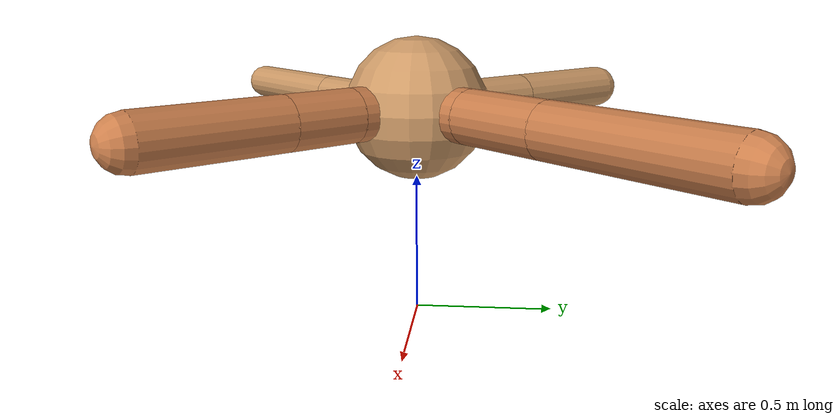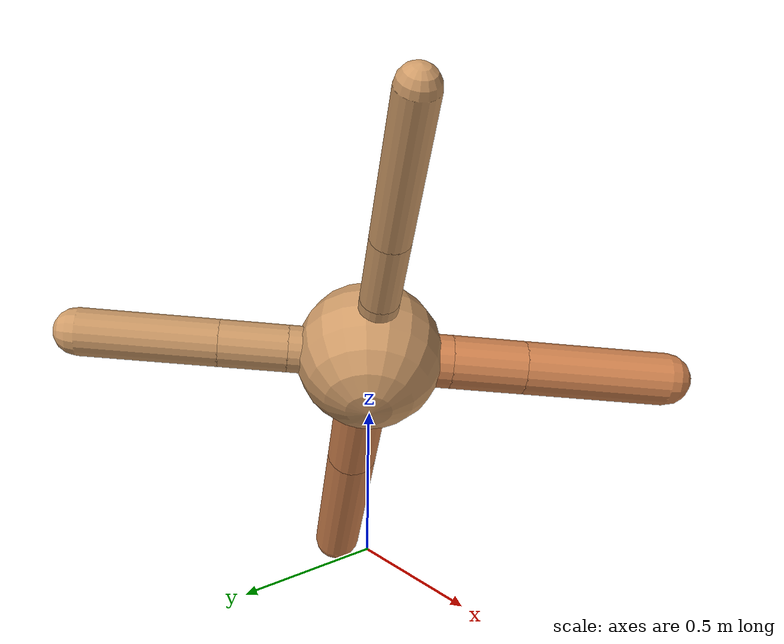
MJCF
<?xml version="1.0" ?>
<mujoco model="ant">

	<compiler angle="degree" coordinate="local" inertiafromgeom="true"/>

	<option integrator="RK4" timestep="0.01"/>

	<custom>

		<numeric data="0.0 0.0 0.55 1.0 0.0 0.0 0.0 0.0 1.0 0.0 -1.0 0.0 -1.0 0.0 1.0" name="init_qpos"/>

	</custom>

	<default>

		<joint armature="1" damping="1" limited="true"/>

		<geom conaffinity="0" condim="3" density="5.0" friction="1.5 0.1 0.1" margin="0.01" rgba="0.8 0.6 0.4 1"/>

	</default>

	<worldbody>

		<body name="torso" pos="0 0 0.75">

			<geom name="torso_geom" pos="0 0 0" size="0.25555048019405985" type="sphere"/>

			<!--joint armature="0" damping="0" limited="false" margin="0.01" name="root" pos="0 0 0" type="free"/-->

			<body name="front_left_leg" pos="0 0 0">

				<geom fromto="0 0 0 0.2 0.2 0" name="aux_1_geom" size="0.09549044981606084" type="capsule" rgba=".8 .5 .3 1"/>

				<body name="aux_1" pos="0.2 0.2 0">

					<joint axis="0 0 1" name="hip_1" pos="0.0 0.0 0.0" range="-40 40" type="hinge"/>

					<geom fromto="0 0 0 0.24183589118436133 0.24183589118436133 0" name="left_leg_geom" size="0.09549044981606084" type="capsule" rgba=".8 .5 .3 1"/>

					<body pos="0.24183589118436133 0.24183589118436133 0" name="front_left_foot">

						<joint axis="-1 1 0" name="ankle_1" pos="0.0 0.0 0.0" range="30 100" type="hinge"/>

						<geom fromto="0 0 0 0.48367178236872266 0.48367178236872266 0" name="left_ankle_geom" size="0.09549044981606084" type="capsule" rgba=".8 .5 .3 1"/>

					</body>

				</body>

			</body>

			<body name="front_right_leg" pos="0 0 0">

				<geom fromto="0 0 0 -0.2 0.2 0" name="aux_2_geom" size="0.08211835151931936" type="capsule"/>

				<body name="aux_2" pos="-0.2 0.2 0">

					<joint axis="0 0 1" name="hip_2" pos="0.0 0.0 0.0" range="-40 40" type="hinge"/>

					<geom fromto="0 0 0 -0.16597572489068219 0.16597572489068219 0" name="right_leg_geom" size="0.08211835151931936" type="capsule"/>

					<body pos="-0.16597572489068219 0.16597572489068219 0" name="front_right_foot">

						<joint axis="1 1 0" name="ankle_2" pos="0.0 0.0 0.0" range="-100 -30" type="hinge"/>

						<geom fromto="0 0 0 -0.33195144978136437 0.33195144978136437 0" name="right_ankle_geom" size="0.08211835151931936" type="capsule"/>

					</body>

				</body>

			</body>

			<body name="left_back_leg" pos="0 0 0">

				<geom fromto="0 0 0 -0.2 -0.2 0" name="aux_3_geom" size="0.06709308261841275" type="capsule"/>

				<body name="aux_3" pos="-0.2 -0.2 0">

					<joint axis="0 0 1" name="hip_3" pos="0.0 0.0 0.0" range="-40 40" type="hinge"/>

					<geom fromto="0 0 0 -0.1862183198085041 -0.1862183198085041 0" name="back_leg_geom" size="0.06709308261841275" type="capsule"/>

					<body pos="-0.1862183198085041 -0.1862183198085041 0" name="left_back_foot">

						<joint axis="-1 1 0" name="ankle_3" pos="0.0 0.0 0.0" range="-100 -30" type="hinge"/>

						<geom fromto="0 0 0 -0.3724366396170082 -0.3724366396170082 0" name="third_ankle_geom" size="0.06709308261841275" type="capsule"/>

					</body>

				</body>

			</body>

			<body name="right_back_leg" pos="0 0 0">

				<geom fromto="0 0 0 0.2 -0.2 0" name="aux_4_geom" size="0.09421549855141664" type="capsule" rgba=".8 .5 .3 1"/>

				<body name="aux_4" pos="0.2 -0.2 0">

					<joint axis="0 0 1" name="hip_4" pos="0.0 0.0 0.0" range="-40 40" type="hinge"/>

					<geom fromto="0 0 0 0.18332435946254605 -0.18332435946254605 0" name="rightback_leg_geom" size="0.09421549855141664" type="capsule" rgba=".8 .5 .3 1"/>

					<body pos="0.18332435946254605 -0.18332435946254605 0" name="right_back_foot">

						<joint axis="1 1 0" name="ankle_4" pos="0.0 0.0 0.0" range="30 100" type="hinge"/>

						<geom fromto="0 0 0 0.3666487189250921 -0.3666487189250921 0" name="fourth_ankle_geom" size="0.09421549855141664" type="capsule" rgba=".8 .5 .3 1"/>

					</body>

				</body>

			</body>

		</body>

	</worldbody>

	<actuator>

		<motor ctrllimited="true" ctrlrange="-1.0 1.0" joint="hip_4" gear="150"/>

		<motor ctrllimited="true" ctrlrange="-1.0 1.0" joint="ankle_4" gear="150"/>

		<motor ctrllimited="true" ctrlrange="-1.0 1.0" joint="hip_1" gear="150"/>

		<motor ctrllimited="true" ctrlrange="-1.0 1.0" joint="ankle_1" gear="150"/>

		<motor ctrllimited="true" ctrlrange="-1.0 1.0" joint="hip_2" gear="150"/>

		<motor ctrllimited="true" ctrlrange="-1.0 1.0" joint="ankle_2" gear="150"/>

		<motor ctrllimited="true" ctrlrange="-1.0 1.0" joint="hip_3" gear="150"/>

		<motor ctrllimited="true" ctrlrange="-1.0 1.0" joint="ankle_3" gear="150"/>

	</actuator>

</mujoco>
